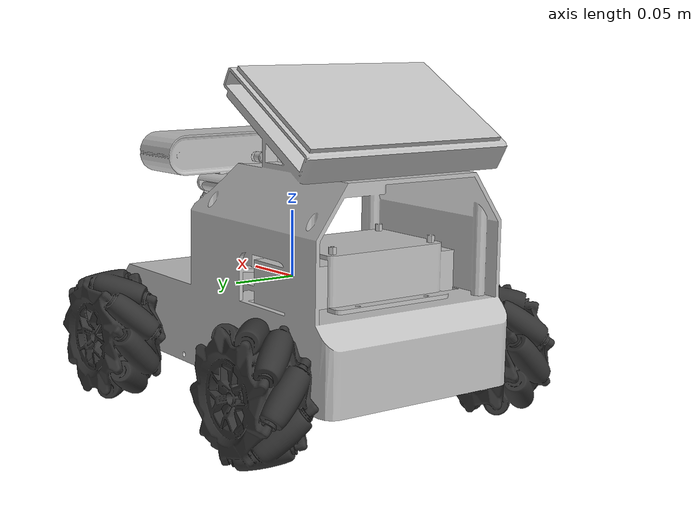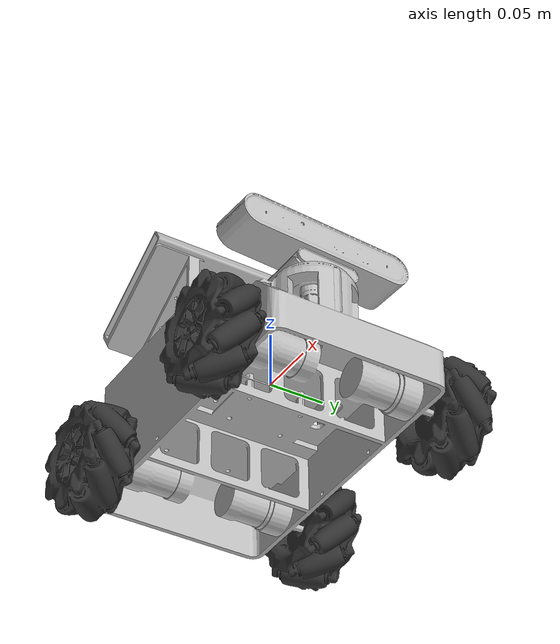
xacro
<?xml version="1.0"?>
<robot xmlns:xacro="http://www.ros.org/wiki/xacro" name="robot_3d" xmlns:gz="http://gazebosim.org/schema">

    <xacro:property name="M_PI" value="3.1415926535897931" />

    <xacro:arg name="robot_name" default="robot_3d"/>
    <xacro:arg name="prefix" default=""/>
    <xacro:arg name="use_gazebo" default="false"/>

    <xacro:include filename="$(find mecanum_robot)/urdf/mech/robot_3d_base.urdf.xacro"/>
    <xacro:include filename="$(find mecanum_robot)/urdf/mech/mecanum_wheel.urdf.xacro"/>
    <xacro:include filename="$(find mecanum_robot)/urdf/sensors/rgbd_camera.urdf.xacro"/>
    <xacro:include filename="$(find mecanum_robot)/urdf/control/mec_mobile.gazebo"/>

  <link name="base_link">
    <inertial>
      <origin
        xyz="0 0 0"
        rpy="0 0 0" />
      <mass
        value="1.76013710919286" />
      <inertia
        ixx="0.00423041439249349"
        ixy="-2.31393934415601E-06"
        ixz="-7.7385064447188E-05"
        iyy="0.00452988705418676"
        iyz="-1.77534456626722E-05"
        izz="0.00785365615805233" />
    </inertial>
    <visual>
      <origin
        xyz="0 0 0"
        rpy="0 0 0" />
      <geometry>
        <mesh
          filename="file://$(find mecanum_robot)/meshes/base_link.STL" />
      </geometry>
      <material
        name="">
        <color
          rgba="0.752941176470588 0.752941176470588 0.752941176470588 1" />
      </material>
    </visual>
    <collision>
      <origin
        xyz="0 0 0"
        rpy="0 0 0" />
      <geometry>
        <mesh
          filename="file://$(find mecanum_robot)/meshes/base_link.STL" />
      </geometry>
    </collision>
  </link>

    <xacro:mecanum_wheel
      prefix="$(arg prefix)"
      side="front_left"
      x_reflect="1"
      y_reflect="1"/>

    <xacro:mecanum_wheel
      prefix="$(arg prefix)"
      side="front_right"
      x_reflect="1"
      y_reflect="-1"/>

    <xacro:mecanum_wheel
      prefix="$(arg prefix)"
      side="back_left"
      x_reflect="-1"
      y_reflect="1"/>

    <xacro:mecanum_wheel
      prefix="$(arg prefix)"
      side="back_right"
      x_reflect="-1"
      y_reflect="-1"/>

  <link
    name="3d_cam_link">
    <inertial>
      <origin
        xyz="-0.0210006288187674 -0.00131588333827759 0.0218801921546786"
        rpy="0 0 0" />
      <mass
        value="0.220446902729757" />
      <inertia
        ixx="0.00040464971483068"
        ixy="2.27974817263347E-05"
        ixz="-1.57137952728035E-07"
        iyy="4.81765109037628E-05"
        iyz="3.6158297393522E-07"
        izz="0.000425228454437918" />
    </inertial>
    <visual>
      <origin
        xyz="0 0 0"
        rpy="0 0 0" />
      <geometry>
        <mesh
          filename="file://$(find mecanum_robot)/meshes/3d_cam_link.STL" />
      </geometry>
      <material
        name="">
        <color
          rgba="0.752941176470588 0.752941176470588 0.752941176470588 1" />
      </material>
    </visual>
    <collision>
      <origin
        xyz="0 0 0"
        rpy="0 0 0" />
      <geometry>
        <mesh
          filename="file://$(find mecanum_robot)/meshes/3d_cam_link.STL" />
      </geometry>
    </collision>
  </link>
  <joint
    name="3d_cam_joint"
    type="fixed">
    <origin
      xyz="0.086515 0.001395 0.065434"
      rpy="0 0 0" />
    <parent
      link="base_link" />
    <child
      link="3d_cam_link" />
    <axis
      xyz="0 0 1" />
  </joint>

  <!-- 2.3 add Gazebo frictions -->
  <gazebo reference='front_left_wheel_link'>
   <collision>
      <surface>
        <friction>
          <ode>
            <mu>1.5</mu>
            <mu2>0.0</mu2>
            <fdir1 gz:expressed_in="base_footprint">1 -1 0</fdir1>
          </ode>
        </friction>
      </surface>
    </collision>
  </gazebo>

  <gazebo reference='back_left_wheel_link'>
   <collision>
      <surface>
        <friction>
          <ode>
            <mu>1.5</mu>
            <mu2>0.0</mu2>
            <fdir1 gz:expressed_in="base_footprint">1 1 0</fdir1>
          </ode>
        </friction>
      </surface>
    </collision>
  </gazebo>

  <gazebo reference='front_right_wheel_link'>
   <collision>
      <surface>
        <friction>
          <ode>
            <mu>1.5</mu>
            <mu2>0.0</mu2>
            <fdir1 gz:expressed_in="base_footprint">1 1 0</fdir1>
          </ode>
        </friction>
      </surface>
    </collision>
  </gazebo>

  <gazebo reference='back_right_wheel_link'>
   <collision>
      <surface>
        <friction>
          <ode>
            <mu>1.5</mu>
            <mu2>0.0</mu2>
            <fdir1 gz:expressed_in="base_footprint">1 -1 0</fdir1>
          </ode>
        </friction>
      </surface>
    </collision>
  </gazebo>

  <gazebo reference="base_link">
    <mu1>0.000002</mu1>
    <mu2>0.000002</mu2>
  </gazebo>

    <!-- 2.5.1 End -->

</robot>

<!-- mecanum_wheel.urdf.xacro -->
<robot xmlns:xacro="http://www.ros.org/wiki/xacro">

  <xacro:property name="wheel_radius" value="0.0325" />
  <xacro:property name="wheel_separation" value="0.169" />
  <xacro:property name="wheel_width" value="0.03040" />
  <xacro:property name="wheel_mass" value="9.1" />
  <xacro:property name="wheel_xoff" value="0.08" />
  <xacro:property name="wheel_yoff" value="-0.01" />

  <xacro:macro name="mecanum_wheel" params="prefix side x_reflect y_reflect">
    <link name="${prefix}${side}_wheel_link">
      <visual>

      <xacro:if value="${side == 'front_left'}">
        <origin
          xyz="1.70532499232934E-09 0.00131588333827759 -2.17116463828437E-06"
          rpy="0 0 0" />
      </xacro:if>
      <xacro:if value="${side == 'back_left'}">
        <origin
          xyz="-1.3230440076839E-09 0.00131588333827759 -2.17248190992336E-06"
          rpy="0 0 0" />
      </xacro:if>
      <xacro:if value="${side == 'front_right'}">
        <origin
          xyz="7.14594161621562E-10 -0.00131588333827759 -2.17116463828437E-06"
          rpy="0 0 0" />
      </xacro:if>
      <xacro:if value="${side == 'back_right'}">
        <origin
          xyz="-1.3230440076839E-09 -0.00131588333827759 -2.17116463828437E-06"
          rpy="0 0 0" />
      </xacro:if>

        <geometry>
          <mesh filename="file://$(find mecanum_robot)/meshes/${side}_wheel_link.STL"/>
        </geometry>
        <material name="dark_gray">
          <color rgba="0.2 0.2 0.2 1.0"/>
        </material>
      </visual>

      <collision>
        <origin xyz="0 0 0" rpy="${pi/2} 0 0"/>
        <geometry>
          <cylinder radius="${wheel_radius}" length="${wheel_width}"/>
        </geometry>
      </collision>

      <inertial>
        <origin xyz="0 0 0" rpy="0 0 0"/>
        <mass value="${wheel_mass}"/>
        <inertia
          ixx="${(wheel_mass/12.0) * (3*wheel_radius*wheel_radius + wheel_width*wheel_width)}" ixy="0" ixz="0"
          iyy="${(wheel_mass/2.0) * (wheel_radius*wheel_radius)}" iyz="0"
          izz="${(wheel_mass/12.0) * (3*wheel_radius*wheel_radius + wheel_width*wheel_width)}"/>
      </inertial>
    </link>

    <joint name="${prefix}${side}_wheel_joint" type="continuous">
      <axis xyz="0 1 0"/>
      <parent link="${prefix}base_link"/>
      <child link="${prefix}${side}_wheel_link"/>

      <xacro:if value="${side == 'front_left'}">
        <origin
          xyz="0.088786 0.12245 -0.047195"
          rpy="0 0 0" />
      </xacro:if>
      <xacro:if value="${side == 'back_left'}">
        <origin
          xyz="-0.10619 0.14252 -0.050184"
          rpy="0 0 0" />
      </xacro:if>
      <xacro:if value="${side == 'front_right'}">
        <origin
          xyz="0.088786 -0.12245 -0.047195"
          rpy="0 0 0" />
      </xacro:if>
      <xacro:if value="${side == 'back_right'}">
        <origin
          xyz="-0.10619 -0.12245 -0.050184"
          rpy="0 0 0" />
      </xacro:if>

    </joint>

    <gazebo reference="${prefix}${side}_wheel_link">
      <surface>
        <friction>
          <ode>
              <mu>1.0</mu>
              <mu2>0.0</mu2>
          </ode>
        </friction>
      </surface>
      <visual>
          <material>
              <ambient>0.2 0.2 0.2 1.0</ambient>
              <diffuse>0.2 0.2 0.2 1.0</diffuse>
              <specular>0.2 0.2 0.2 1.0</specular>
              <emissive>0.0 0.0 0.0 0.0</emissive>
          </material>
      </visual>
  </gazebo>

  </xacro:macro>
</robot>
